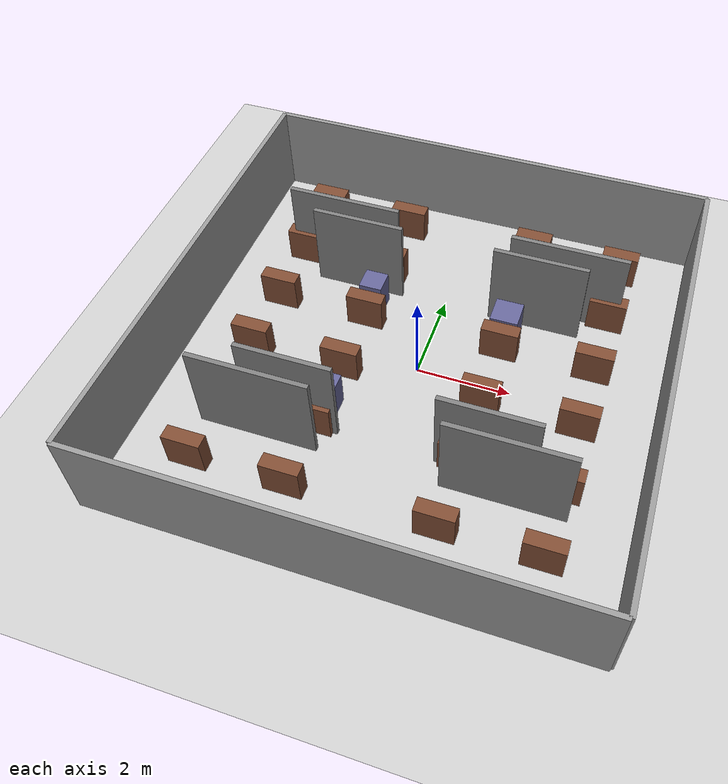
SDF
<?xml version="1.0" ?>
<sdf version="1.7">
  <world name="warehouse">
    <!-- Ambient light -->
    <light type="directional" name="sun">
      <cast_shadows>true</cast_shadows>
      <pose>0 0 10 0 0 0</pose>
      <diffuse>0.8 0.8 0.8 1</diffuse>
      <specular>0.2 0.2 0.2 1</specular>
      <attenuation>
        <range>1000</range>
        <constant>0.9</constant>
        <linear>0.01</linear>
        <quadratic>0.001</quadratic>
      </attenuation>
      <direction>-0.5 0.1 -0.9</direction>
    </light>

    <!-- Ground plane -->
    <model name="ground_plane">
      <static>true</static>
      <link name="link">
        <collision name="collision">
          <geometry>
            <plane>
              <normal>0 0 1</normal>
              <size>12 12</size>
            </plane>
          </geometry>
        </collision>
        <visual name="visual">
          <geometry>
            <plane>
              <normal>0 0 1</normal>
              <size>12 12</size>
            </plane>
          </geometry>
          <material>
            <ambient>0.8 0.8 0.8 1</ambient>
            <diffuse>0.8 0.8 0.8 1</diffuse>
          </material>
        </visual>
      </link>
    </model>

    <!-- Warehouse walls and structure - scaled appropriately for TurtleBot3 -->
    <!-- Back wall (positioned at z=1.0 so bottom is at ground level) -->
    <model name="back_wall">
      <static>true</static>
      <pose>0 -5 1.0 0 0 0</pose>
      <link name="link">
        <collision name="collision">
          <geometry>
            <box>
              <size>10 0.1 2</size>
            </box>
          </geometry>
        </collision>
        <visual name="visual">
          <geometry>
            <box>
              <size>10 0.1 2</size>
            </box>
          </geometry>
          <material>
            <ambient>0.6 0.6 0.6 1</ambient>
            <diffuse>0.6 0.6 0.6 1</diffuse>
          </material>
        </visual>
      </link>
    </model>

    <!-- Front wall -->
    <model name="front_wall">
      <static>true</static>
      <pose>0 5 1.0 0 0 0</pose>
      <link name="link">
        <collision name="collision">
          <geometry>
            <box>
              <size>10 0.1 2</size>
            </box>
          </geometry>
        </collision>
        <visual name="visual">
          <geometry>
            <box>
              <size>10 0.1 2</size>
            </box>
          </geometry>
          <material>
            <ambient>0.6 0.6 0.6 1</ambient>
            <diffuse>0.6 0.6 0.6 1</diffuse>
          </material>
        </visual>
      </link>
    </model>

    <!-- Left wall -->
    <model name="left_wall">
      <static>true</static>
      <pose>-5 0 1.0 0 0 0</pose>
      <link name="link">
        <collision name="collision">
          <geometry>
            <box>
              <size>0.1 10 2</size>
            </box>
          </geometry>
        </collision>
        <visual name="visual">
          <geometry>
            <box>
              <size>0.1 10 2</size>
            </box>
          </geometry>
          <material>
            <ambient>0.6 0.6 0.6 1</ambient>
            <diffuse>0.6 0.6 0.6 1</diffuse>
          </material>
        </visual>
      </link>
    </model>

    <!-- Right wall -->
    <model name="right_wall">
      <static>true</static>
      <pose>5 0 1.0 0 0 0</pose>
      <link name="link">
        <collision name="collision">
          <geometry>
            <box>
              <size>0.1 10 2</size>
            </box>
          </geometry>
        </collision>
        <visual name="visual">
          <geometry>
            <box>
              <size>0.1 10 2</size>
            </box>
          </geometry>
          <material>
            <ambient>0.6 0.6 0.6 1</ambient>
            <diffuse>0.6 0.6 0.6 1</diffuse>
          </material>
        </visual>
      </link>
    </model>

    <!-- Warehouse shelves/obstacles creating navigation paths -->
    <!-- More dense layout with multiple rows and columns -->

    <!-- Row 1 (y = -3.5) -->
    <model name="shelf_r1_c1">
      <static>true</static>
      <pose>-3.5 -3.5 0.4 0 0 0</pose>
      <link name="link">
        <collision name="collision"><geometry><box><size>0.8 0.3 0.8</size></box></geometry></collision>
        <visual name="visual"><geometry><box><size>0.8 0.3 0.8</size></box></geometry>
          <material><ambient>0.5 0.3 0.2 1</ambient><diffuse>0.5 0.3 0.2 1</diffuse></material></visual>
      </link>
    </model>
    <model name="shelf_r1_c2">
      <static>true</static>
      <pose>-1.5 -3.5 0.4 0 0 0</pose>
      <link name="link">
        <collision name="collision"><geometry><box><size>0.8 0.3 0.8</size></box></geometry></collision>
        <visual name="visual"><geometry><box><size>0.8 0.3 0.8</size></box></geometry>
          <material><ambient>0.5 0.3 0.2 1</ambient><diffuse>0.5 0.3 0.2 1</diffuse></material></visual>
      </link>
    </model>
    <model name="shelf_r1_c3">
      <static>true</static>
      <pose>1.5 -3.5 0.4 0 0 0</pose>
      <link name="link">
        <collision name="collision"><geometry><box><size>0.8 0.3 0.8</size></box></geometry></collision>
        <visual name="visual"><geometry><box><size>0.8 0.3 0.8</size></box></geometry>
          <material><ambient>0.5 0.3 0.2 1</ambient><diffuse>0.5 0.3 0.2 1</diffuse></material></visual>
      </link>
    </model>
    <model name="shelf_r1_c4">
      <static>true</static>
      <pose>3.5 -3.5 0.4 0 0 0</pose>
      <link name="link">
        <collision name="collision"><geometry><box><size>0.8 0.3 0.8</size></box></geometry></collision>
        <visual name="visual"><geometry><box><size>0.8 0.3 0.8</size></box></geometry>
          <material><ambient>0.5 0.3 0.2 1</ambient><diffuse>0.5 0.3 0.2 1</diffuse></material></visual>
      </link>
    </model>

    <!-- Row 2 (y = -2.0) -->
    <model name="shelf_r2_c1">
      <static>true</static>
      <pose>-3.5 -2.0 0.4 0 0 0</pose>
      <link name="link">
        <collision name="collision"><geometry><box><size>0.8 0.3 0.8</size></box></geometry></collision>
        <visual name="visual"><geometry><box><size>0.8 0.3 0.8</size></box></geometry>
          <material><ambient>0.5 0.3 0.2 1</ambient><diffuse>0.5 0.3 0.2 1</diffuse></material></visual>
      </link>
    </model>
    <model name="shelf_r2_c2">
      <static>true</static>
      <pose>-1.5 -2.0 0.4 0 0 0</pose>
      <link name="link">
        <collision name="collision"><geometry><box><size>0.8 0.3 0.8</size></box></geometry></collision>
        <visual name="visual"><geometry><box><size>0.8 0.3 0.8</size></box></geometry>
          <material><ambient>0.5 0.3 0.2 1</ambient><diffuse>0.5 0.3 0.2 1</diffuse></material></visual>
      </link>
    </model>
    <model name="shelf_r2_c3">
      <static>true</static>
      <pose>1.5 -2.0 0.4 0 0 0</pose>
      <link name="link">
        <collision name="collision"><geometry><box><size>0.8 0.3 0.8</size></box></geometry></collision>
        <visual name="visual"><geometry><box><size>0.8 0.3 0.8</size></box></geometry>
          <material><ambient>0.5 0.3 0.2 1</ambient><diffuse>0.5 0.3 0.2 1</diffuse></material></visual>
      </link>
    </model>
    <model name="shelf_r2_c4">
      <static>true</static>
      <pose>3.5 -2.0 0.4 0 0 0</pose>
      <link name="link">
        <collision name="collision"><geometry><box><size>0.8 0.3 0.8</size></box></geometry></collision>
        <visual name="visual"><geometry><box><size>0.8 0.3 0.8</size></box></geometry>
          <material><ambient>0.5 0.3 0.2 1</ambient><diffuse>0.5 0.3 0.2 1</diffuse></material></visual>
      </link>
    </model>

    <!-- Row 3 (y = -0.5) -->
    <model name="shelf_r3_c1">
      <static>true</static>
      <pose>-3.5 -0.5 0.4 0 0 0</pose>
      <link name="link">
        <collision name="collision"><geometry><box><size>0.8 0.3 0.8</size></box></geometry></collision>
        <visual name="visual"><geometry><box><size>0.8 0.3 0.8</size></box></geometry>
          <material><ambient>0.5 0.3 0.2 1</ambient><diffuse>0.5 0.3 0.2 1</diffuse></material></visual>
      </link>
    </model>
    <model name="shelf_r3_c2">
      <static>true</static>
      <pose>-1.5 -0.5 0.4 0 0 0</pose>
      <link name="link">
        <collision name="collision"><geometry><box><size>0.8 0.3 0.8</size></box></geometry></collision>
        <visual name="visual"><geometry><box><size>0.8 0.3 0.8</size></box></geometry>
          <material><ambient>0.5 0.3 0.2 1</ambient><diffuse>0.5 0.3 0.2 1</diffuse></material></visual>
      </link>
    </model>
    <model name="shelf_r3_c3">
      <static>true</static>
      <pose>1.5 -0.5 0.4 0 0 0</pose>
      <link name="link">
        <collision name="collision"><geometry><box><size>0.8 0.3 0.8</size></box></geometry></collision>
        <visual name="visual"><geometry><box><size>0.8 0.3 0.8</size></box></geometry>
          <material><ambient>0.5 0.3 0.2 1</ambient><diffuse>0.5 0.3 0.2 1</diffuse></material></visual>
      </link>
    </model>
    <model name="shelf_r3_c4">
      <static>true</static>
      <pose>3.5 -0.5 0.4 0 0 0</pose>
      <link name="link">
        <collision name="collision"><geometry><box><size>0.8 0.3 0.8</size></box></geometry></collision>
        <visual name="visual"><geometry><box><size>0.8 0.3 0.8</size></box></geometry>
          <material><ambient>0.5 0.3 0.2 1</ambient><diffuse>0.5 0.3 0.2 1</diffuse></material></visual>
      </link>
    </model>

    <!-- Row 4 (y = 1.0) -->
    <model name="shelf_r4_c1">
      <static>true</static>
      <pose>-3.5 1.0 0.4 0 0 0</pose>
      <link name="link">
        <collision name="collision"><geometry><box><size>0.8 0.3 0.8</size></box></geometry></collision>
        <visual name="visual"><geometry><box><size>0.8 0.3 0.8</size></box></geometry>
          <material><ambient>0.5 0.3 0.2 1</ambient><diffuse>0.5 0.3 0.2 1</diffuse></material></visual>
      </link>
    </model>
    <model name="shelf_r4_c2">
      <static>true</static>
      <pose>-1.5 1.0 0.4 0 0 0</pose>
      <link name="link">
        <collision name="collision"><geometry><box><size>0.8 0.3 0.8</size></box></geometry></collision>
        <visual name="visual"><geometry><box><size>0.8 0.3 0.8</size></box></geometry>
          <material><ambient>0.5 0.3 0.2 1</ambient><diffuse>0.5 0.3 0.2 1</diffuse></material></visual>
      </link>
    </model>
    <model name="shelf_r4_c3">
      <static>true</static>
      <pose>1.5 1.0 0.4 0 0 0</pose>
      <link name="link">
        <collision name="collision"><geometry><box><size>0.8 0.3 0.8</size></box></geometry></collision>
        <visual name="visual"><geometry><box><size>0.8 0.3 0.8</size></box></geometry>
          <material><ambient>0.5 0.3 0.2 1</ambient><diffuse>0.5 0.3 0.2 1</diffuse></material></visual>
      </link>
    </model>
    <model name="shelf_r4_c4">
      <static>true</static>
      <pose>3.5 1.0 0.4 0 0 0</pose>
      <link name="link">
        <collision name="collision"><geometry><box><size>0.8 0.3 0.8</size></box></geometry></collision>
        <visual name="visual"><geometry><box><size>0.8 0.3 0.8</size></box></geometry>
          <material><ambient>0.5 0.3 0.2 1</ambient><diffuse>0.5 0.3 0.2 1</diffuse></material></visual>
      </link>
    </model>

    <!-- Row 5 (y = 2.5) -->
    <model name="shelf_r5_c1">
      <static>true</static>
      <pose>-3.5 2.5 0.4 0 0 0</pose>
      <link name="link">
        <collision name="collision"><geometry><box><size>0.8 0.3 0.8</size></box></geometry></collision>
        <visual name="visual"><geometry><box><size>0.8 0.3 0.8</size></box></geometry>
          <material><ambient>0.5 0.3 0.2 1</ambient><diffuse>0.5 0.3 0.2 1</diffuse></material></visual>
      </link>
    </model>
    <model name="shelf_r5_c2">
      <static>true</static>
      <pose>-1.5 2.5 0.4 0 0 0</pose>
      <link name="link">
        <collision name="collision"><geometry><box><size>0.8 0.3 0.8</size></box></geometry></collision>
        <visual name="visual"><geometry><box><size>0.8 0.3 0.8</size></box></geometry>
          <material><ambient>0.5 0.3 0.2 1</ambient><diffuse>0.5 0.3 0.2 1</diffuse></material></visual>
      </link>
    </model>
    <model name="shelf_r5_c3">
      <static>true</static>
      <pose>1.5 2.5 0.4 0 0 0</pose>
      <link name="link">
        <collision name="collision"><geometry><box><size>0.8 0.3 0.8</size></box></geometry></collision>
        <visual name="visual"><geometry><box><size>0.8 0.3 0.8</size></box></geometry>
          <material><ambient>0.5 0.3 0.2 1</ambient><diffuse>0.5 0.3 0.2 1</diffuse></material></visual>
      </link>
    </model>
    <model name="shelf_r5_c4">
      <static>true</static>
      <pose>3.5 2.5 0.4 0 0 0</pose>
      <link name="link">
        <collision name="collision"><geometry><box><size>0.8 0.3 0.8</size></box></geometry></collision>
        <visual name="visual"><geometry><box><size>0.8 0.3 0.8</size></box></geometry>
          <material><ambient>0.5 0.3 0.2 1</ambient><diffuse>0.5 0.3 0.2 1</diffuse></material></visual>
      </link>
    </model>

    <!-- Row 6 (y = 4.0) -->
    <model name="shelf_r6_c1">
      <static>true</static>
      <pose>-3.5 4.0 0.4 0 0 0</pose>
      <link name="link">
        <collision name="collision"><geometry><box><size>0.8 0.3 0.8</size></box></geometry></collision>
        <visual name="visual"><geometry><box><size>0.8 0.3 0.8</size></box></geometry>
          <material><ambient>0.5 0.3 0.2 1</ambient><diffuse>0.5 0.3 0.2 1</diffuse></material></visual>
      </link>
    </model>
    <model name="shelf_r6_c2">
      <static>true</static>
      <pose>-1.5 4.0 0.4 0 0 0</pose>
      <link name="link">
        <collision name="collision"><geometry><box><size>0.8 0.3 0.8</size></box></geometry></collision>
        <visual name="visual"><geometry><box><size>0.8 0.3 0.8</size></box></geometry>
          <material><ambient>0.5 0.3 0.2 1</ambient><diffuse>0.5 0.3 0.2 1</diffuse></material></visual>
      </link>
    </model>
    <model name="shelf_r6_c3">
      <static>true</static>
      <pose>1.5 4.0 0.4 0 0 0</pose>
      <link name="link">
        <collision name="collision"><geometry><box><size>0.8 0.3 0.8</size></box></geometry></collision>
        <visual name="visual"><geometry><box><size>0.8 0.3 0.8</size></box></geometry>
          <material><ambient>0.5 0.3 0.2 1</ambient><diffuse>0.5 0.3 0.2 1</diffuse></material></visual>
      </link>
    </model>
    <model name="shelf_r6_c4">
      <static>true</static>
      <pose>3.5 4.0 0.4 0 0 0</pose>
      <link name="link">
        <collision name="collision"><geometry><box><size>0.8 0.3 0.8</size></box></geometry></collision>
        <visual name="visual"><geometry><box><size>0.8 0.3 0.8</size></box></geometry>
          <material><ambient>0.5 0.3 0.2 1</ambient><diffuse>0.5 0.3 0.2 1</diffuse></material></visual>
      </link>
    </model>

    <!-- Partial dividers - create aisles but leave openings for navigation -->
    <!-- Vertical divider 1 (partial - leaves opening in center around y=0) -->
    <model name="divider_v1_top">
      <static>true</static>
      <pose>-2.5 2.5 1.0 0 0 1.5708</pose>
      <link name="link">
        <collision name="collision"><geometry><box><size>0.1 2.5 2</size></box></geometry></collision>
        <visual name="visual"><geometry><box><size>0.1 2.5 2</size></box></geometry>
          <material><ambient>0.5 0.5 0.5 1</ambient><diffuse>0.5 0.5 0.5 1</diffuse></material></visual>
      </link>
    </model>
    <model name="divider_v1_bottom">
      <static>true</static>
      <pose>-2.5 -2.5 1.0 0 0 1.5708</pose>
      <link name="link">
        <collision name="collision"><geometry><box><size>0.1 2.5 2</size></box></geometry></collision>
        <visual name="visual"><geometry><box><size>0.1 2.5 2</size></box></geometry>
          <material><ambient>0.5 0.5 0.5 1</ambient><diffuse>0.5 0.5 0.5 1</diffuse></material></visual>
      </link>
    </model>

    <!-- Vertical divider 2 (partial - leaves opening in center around y=0) -->
    <model name="divider_v2_top">
      <static>true</static>
      <pose>2.5 2.5 1.0 0 0 1.5708</pose>
      <link name="link">
        <collision name="collision"><geometry><box><size>0.1 2.5 2</size></box></geometry></collision>
        <visual name="visual"><geometry><box><size>0.1 2.5 2</size></box></geometry>
          <material><ambient>0.5 0.5 0.5 1</ambient><diffuse>0.5 0.5 0.5 1</diffuse></material></visual>
      </link>
    </model>
    <model name="divider_v2_bottom">
      <static>true</static>
      <pose>2.5 -2.5 1.0 0 0 1.5708</pose>
      <link name="link">
        <collision name="collision"><geometry><box><size>0.1 2.5 2</size></box></geometry></collision>
        <visual name="visual"><geometry><box><size>0.1 2.5 2</size></box></geometry>
          <material><ambient>0.5 0.5 0.5 1</ambient><diffuse>0.5 0.5 0.5 1</diffuse></material></visual>
      </link>
    </model>

    <!-- Horizontal divider 1 (partial - leaves opening on sides) -->
    <model name="divider_h1_left">
      <static>true</static>
      <pose>-2.0 -2.0 1.0 0 0 0</pose>
      <link name="link">
        <collision name="collision"><geometry><box><size>2 0.1 2</size></box></geometry></collision>
        <visual name="visual"><geometry><box><size>2 0.1 2</size></box></geometry>
          <material><ambient>0.5 0.5 0.5 1</ambient><diffuse>0.5 0.5 0.5 1</diffuse></material></visual>
      </link>
    </model>
    <model name="divider_h1_right">
      <static>true</static>
      <pose>2.0 -2.0 1.0 0 0 0</pose>
      <link name="link">
        <collision name="collision"><geometry><box><size>2 0.1 2</size></box></geometry></collision>
        <visual name="visual"><geometry><box><size>2 0.1 2</size></box></geometry>
          <material><ambient>0.5 0.5 0.5 1</ambient><diffuse>0.5 0.5 0.5 1</diffuse></material></visual>
      </link>
    </model>

    <!-- Horizontal divider 2 (partial - leaves opening on sides) -->
    <model name="divider_h2_left">
      <static>true</static>
      <pose>-2.0 2.0 1.0 0 0 0</pose>
      <link name="link">
        <collision name="collision"><geometry><box><size>2 0.1 2</size></box></geometry></collision>
        <visual name="visual"><geometry><box><size>2 0.1 2</size></box></geometry>
          <material><ambient>0.5 0.5 0.5 1</ambient><diffuse>0.5 0.5 0.5 1</diffuse></material></visual>
      </link>
    </model>
    <model name="divider_h2_right">
      <static>true</static>
      <pose>2.0 2.0 1.0 0 0 0</pose>
      <link name="link">
        <collision name="collision"><geometry><box><size>2 0.1 2</size></box></geometry></collision>
        <visual name="visual"><geometry><box><size>2 0.1 2</size></box></geometry>
          <material><ambient>0.5 0.5 0.5 1</ambient><diffuse>0.5 0.5 0.5 1</diffuse></material></visual>
      </link>
    </model>

    <!-- Additional center obstacles to create more complex paths (moved away from spawn point) -->
    <model name="center_obstacle_1">
      <static>true</static>
      <pose>-1.5 -1.5 0.4 0 0 0</pose>
      <link name="link">
        <collision name="collision"><geometry><box><size>0.6 0.6 0.8</size></box></geometry></collision>
        <visual name="visual"><geometry><box><size>0.6 0.6 0.8</size></box></geometry>
          <material><ambient>0.4 0.4 0.6 1</ambient><diffuse>0.4 0.4 0.6 1</diffuse></material></visual>
      </link>
    </model>
    <model name="center_obstacle_2">
      <static>true</static>
      <pose>1.5 1.5 0.4 0 0 0</pose>
      <link name="link">
        <collision name="collision"><geometry><box><size>0.6 0.6 0.8</size></box></geometry></collision>
        <visual name="visual"><geometry><box><size>0.6 0.6 0.8</size></box></geometry>
          <material><ambient>0.4 0.4 0.6 1</ambient><diffuse>0.4 0.4 0.6 1</diffuse></material></visual>
      </link>
    </model>
    <model name="center_obstacle_3">
      <static>true</static>
      <pose>-1.5 1.5 0.4 0 0 0</pose>
      <link name="link">
        <collision name="collision"><geometry><box><size>0.5 0.5 0.8</size></box></geometry></collision>
        <visual name="visual"><geometry><box><size>0.5 0.5 0.8</size></box></geometry>
          <material><ambient>0.4 0.4 0.6 1</ambient><diffuse>0.4 0.4 0.6 1</diffuse></material></visual>
      </link>
    </model>
    <model name="center_obstacle_4">
      <static>true</static>
      <pose>1.5 -1.5 0.4 0 0 0</pose>
      <link name="link">
        <collision name="collision"><geometry><box><size>0.5 0.5 0.8</size></box></geometry></collision>
        <visual name="visual"><geometry><box><size>0.5 0.5 0.8</size></box></geometry>
          <material><ambient>0.4 0.4 0.6 1</ambient><diffuse>0.4 0.4 0.6 1</diffuse></material></visual>
      </link>
    </model>

    <!-- Physics settings -->
    <physics type="ignition">
      <max_step_size>0.001</max_step_size>
      <real_time_factor>1.0</real_time_factor>
    </physics>

    <!-- Scene settings -->
    <scene>
      <ambient>0.4 0.4 0.4 1</ambient>
      <background>0.7 0.7 0.7 1</background>
      <shadows>true</shadows>
    </scene>

    <!-- GUI plugin for camera view -->
    <gui fullscreen="0">
      <camera name="user_camera">
        <pose>3 -3 3 0 0.5 -0.79</pose>
        <view_controller>orbit</view_controller>
        <projection_type>perspective</projection_type>
      </camera>
    </gui>
  </world>
</sdf>
